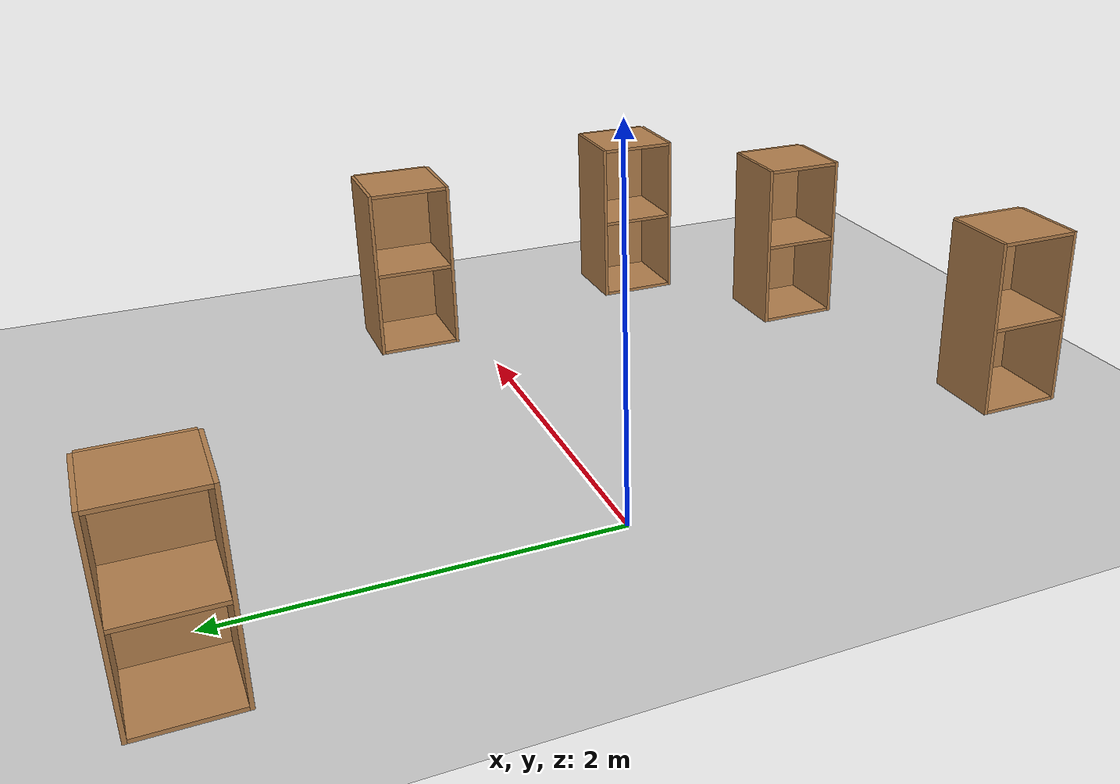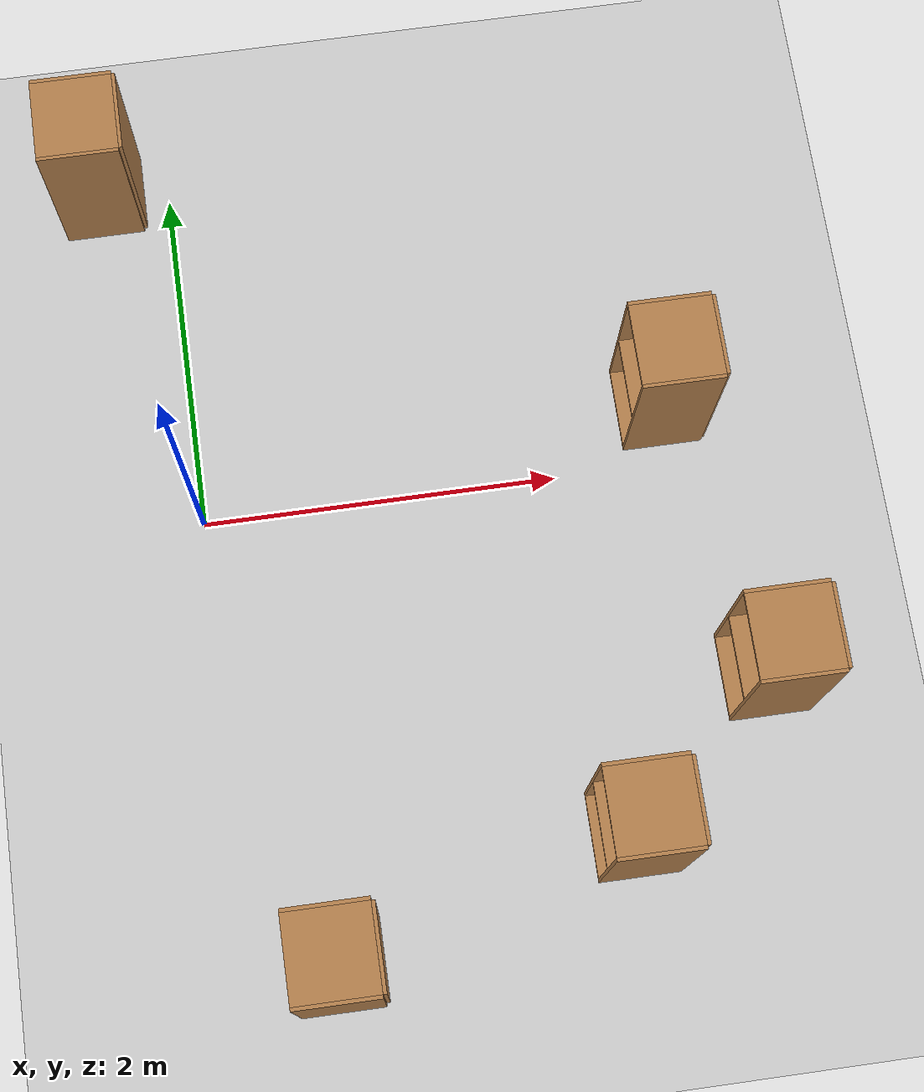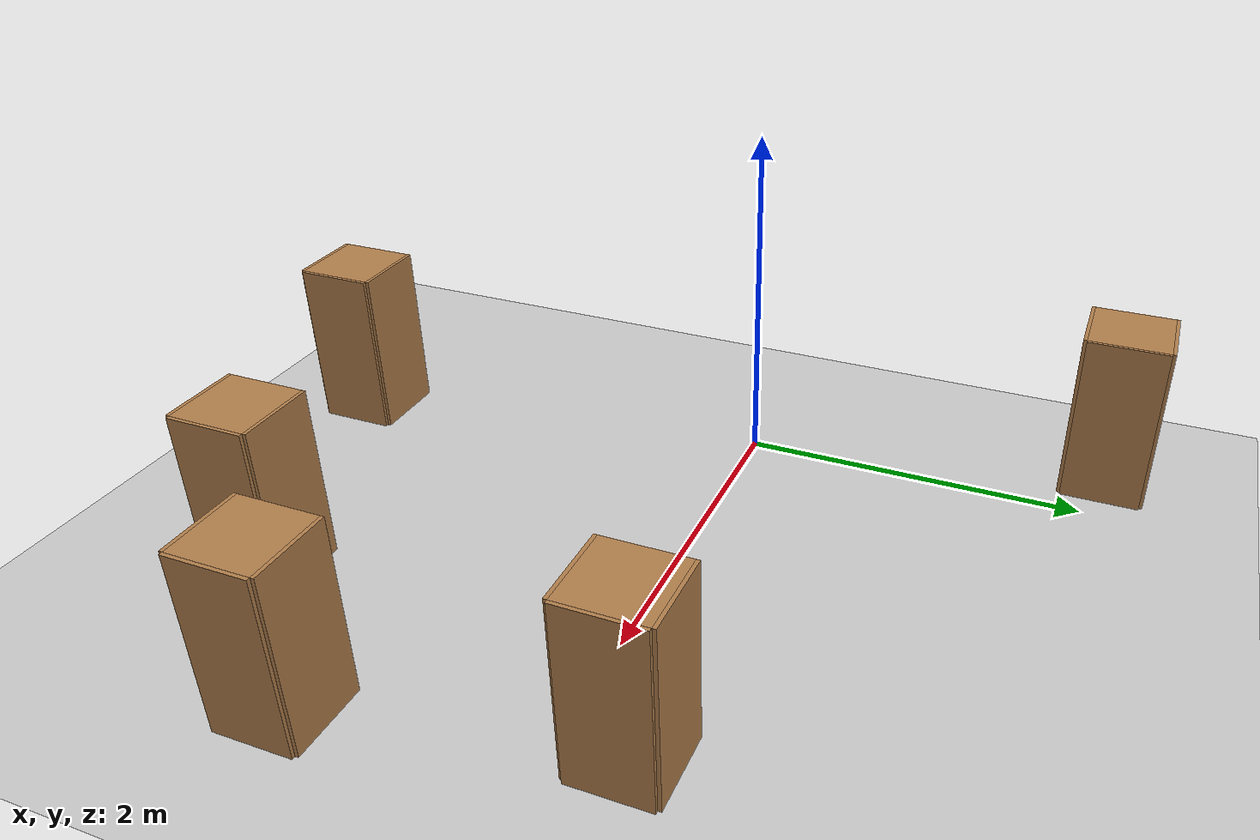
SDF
<sdf version="1.7">
 <world name="default">
  <model name="ground_plane">
   <static>1</static>
   <link name="link">
    <collision name="collision">
     <geometry><plane><normal>0 0 1</normal><size>100 100</size></plane></geometry>
     <surface>
      <contact><collide_bitmask>65535</collide_bitmask></contact>
      <friction><ode><mu>100</mu><mu2>50</mu2></ode></friction>
     </surface>
    </collision>
    <visual name="visual">
     <cast_shadows>0</cast_shadows>
     <geometry><plane><normal>0 0 1</normal><size>100 100</size></plane></geometry>
     <material>
      <script><uri>file://media/materials/scripts/gazebo.material</uri><name>Gazebo/Grey</name></script>
     </material>
    </visual>
   </link>
  </model>
  <model name="cabinet_clone_1">
   <static>1</static>
   <link name="cabinet_bottom_plate">
    <inertial>
     <pose>0 0 -1 0 -0 0</pose>
     <inertia><ixx>2.05</ixx><ixy>0</ixy><ixz>0</ixz><iyy>2.05</iyy><iyz>0</iyz><izz>2.05</izz></inertia>
     <mass>25</mass>
    </inertial>
    <collision name="cabinet_bottom_plate_geom">
     <pose>0 0 0.01 0 -0 0</pose>
     <geometry><box><size>0.45 0.45 0.02</size></box></geometry>
    </collision>
    <visual name="cabinet_bottom_plate_geom_visual">
     <pose>0 0 0.01 0 -0 0</pose>
     <geometry><box><size>0.45 0.45 0.02</size></box></geometry>
     <material>
      <script><uri>file://media/materials/scripts/gazebo.material</uri><name>Gazebo/Wood</name></script>
     </material>
    </visual>
    <collision name="cabinet_bottom_plate_geom_cabinet_back_plate">
     <pose>0.235 0 0.51 0 -0 0</pose>
     <geometry><box><size>0.02 0.45 1.02</size></box></geometry>
    </collision>
    <visual name="cabinet_bottom_plate_geom_cabinet_back_plate_visual">
     <pose>0.235 0 0.51 0 -0 0</pose>
     <geometry><box><size>0.02 0.45 1.02</size></box></geometry>
     <material>
      <script><uri>file://media/materials/scripts/gazebo.material</uri><name>Gazebo/Wood</name></script>
     </material>
    </visual>
    <collision name="cabinet_bottom_plate_geom_cabinet_left_plate">
     <pose>0 0.235 0.51 0 -0 0</pose>
     <geometry><box><size>0.45 0.02 1.02</size></box></geometry>
    </collision>
    <visual name="cabinet_bottom_plate_geom_cabinet_left_plate_visual">
     <pose>0 0.235 0.51 0 -0 0</pose>
     <geometry><box><size>0.45 0.02 1.02</size></box></geometry>
     <material>
      <script><uri>file://media/materials/scripts/gazebo.material</uri><name>Gazebo/Wood</name></script>
     </material>
    </visual>
    <collision name="cabinet_bottom_plate_geom_cabinet_middle_plate">
     <pose>0 0 0.51 0 -0 0</pose>
     <geometry><box><size>0.45 0.45 0.02</size></box></geometry>
    </collision>
    <visual name="cabinet_bottom_plate_geom_cabinet_middle_plate_visual">
     <pose>0 0 0.51 0 -0 0</pose>
     <geometry><box><size>0.45 0.45 0.02</size></box></geometry>
     <material>
      <script><uri>file://media/materials/scripts/gazebo.material</uri><name>Gazebo/Wood</name></script>
     </material>
    </visual>
    <collision name="cabinet_bottom_plate_geom_cabinet_right_plate">
     <pose>0 -0.235 0.51 0 -0 0</pose>
     <geometry><box><size>0.45 0.02 1.02</size></box></geometry>
    </collision>
    <visual name="cabinet_bottom_plate_geom_cabinet_right_plate_visual">
     <pose>0 -0.235 0.51 0 -0 0</pose>
     <geometry><box><size>0.45 0.02 1.02</size></box></geometry>
     <material>
      <script><uri>file://media/materials/scripts/gazebo.material</uri><name>Gazebo/Wood</name></script>
     </material>
    </visual>
    <collision name="cabinet_bottom_plate_geom_cabinet_top_plate">
     <pose>0 0 1.01 0 -0 0</pose>
     <geometry><box><size>0.45 0.45 0.02</size></box></geometry>
    </collision>
    <visual name="cabinet_bottom_plate_geom_cabinet_top_plate_visual">
     <pose>0 0 1.01 0 -0 0</pose>
     <geometry><box><size>0.45 0.45 0.02</size></box></geometry>
     <material>
      <script><uri>file://media/materials/scripts/gazebo.material</uri><name>Gazebo/Wood</name></script>
     </material>
    </visual>
   </link>
   <pose>0.445414 -2.52539 0 0 -0 0</pose>
  </model>
  <model name="cabinet_clone_2">
   <static>1</static>
   <link name="cabinet_bottom_plate">
    <inertial>
     <pose>0 0 -1 0 -0 0</pose>
     <inertia><ixx>2.05</ixx><ixy>0</ixy><ixz>0</ixz><iyy>2.05</iyy><iyz>0</iyz><izz>2.05</izz></inertia>
     <mass>25</mass>
    </inertial>
    <collision name="cabinet_bottom_plate_geom">
     <pose>0 0 0.01 0 -0 0</pose>
     <geometry><box><size>0.45 0.45 0.02</size></box></geometry>
    </collision>
    <visual name="cabinet_bottom_plate_geom_visual">
     <pose>0 0 0.01 0 -0 0</pose>
     <geometry><box><size>0.45 0.45 0.02</size></box></geometry>
     <material>
      <script><uri>file://media/materials/scripts/gazebo.material</uri><name>Gazebo/Wood</name></script>
     </material>
    </visual>
    <collision name="cabinet_bottom_plate_geom_cabinet_back_plate">
     <pose>0.235 0 0.51 0 -0 0</pose>
     <geometry><box><size>0.02 0.45 1.02</size></box></geometry>
    </collision>
    <visual name="cabinet_bottom_plate_geom_cabinet_back_plate_visual">
     <pose>0.235 0 0.51 0 -0 0</pose>
     <geometry><box><size>0.02 0.45 1.02</size></box></geometry>
     <material>
      <script><uri>file://media/materials/scripts/gazebo.material</uri><name>Gazebo/Wood</name></script>
     </material>
    </visual>
    <collision name="cabinet_bottom_plate_geom_cabinet_left_plate">
     <pose>0 0.235 0.51 0 -0 0</pose>
     <geometry><box><size>0.45 0.02 1.02</size></box></geometry>
    </collision>
    <visual name="cabinet_bottom_plate_geom_cabinet_left_plate_visual">
     <pose>0 0.235 0.51 0 -0 0</pose>
     <geometry><box><size>0.45 0.02 1.02</size></box></geometry>
     <material>
      <script><uri>file://media/materials/scripts/gazebo.material</uri><name>Gazebo/Wood</name></script>
     </material>
    </visual>
    <collision name="cabinet_bottom_plate_geom_cabinet_middle_plate">
     <pose>0 0 0.51 0 -0 0</pose>
     <geometry><box><size>0.45 0.45 0.02</size></box></geometry>
    </collision>
    <visual name="cabinet_bottom_plate_geom_cabinet_middle_plate_visual">
     <pose>0 0 0.51 0 -0 0</pose>
     <geometry><box><size>0.45 0.45 0.02</size></box></geometry>
     <material>
      <script><uri>file://media/materials/scripts/gazebo.material</uri><name>Gazebo/Wood</name></script>
     </material>
    </visual>
    <collision name="cabinet_bottom_plate_geom_cabinet_right_plate">
     <pose>0 -0.235 0.51 0 -0 0</pose>
     <geometry><box><size>0.45 0.02 1.02</size></box></geometry>
    </collision>
    <visual name="cabinet_bottom_plate_geom_cabinet_right_plate_visual">
     <pose>0 -0.235 0.51 0 -0 0</pose>
     <geometry><box><size>0.45 0.02 1.02</size></box></geometry>
     <material>
      <script><uri>file://media/materials/scripts/gazebo.material</uri><name>Gazebo/Wood</name></script>
     </material>
    </visual>
    <collision name="cabinet_bottom_plate_geom_cabinet_top_plate">
     <pose>0 0 1.01 0 -0 0</pose>
     <geometry><box><size>0.45 0.45 0.02</size></box></geometry>
    </collision>
    <visual name="cabinet_bottom_plate_geom_cabinet_top_plate_visual">
     <pose>0 0 1.01 0 -0 0</pose>
     <geometry><box><size>0.45 0.45 0.02</size></box></geometry>
     <material>
      <script><uri>file://media/materials/scripts/gazebo.material</uri><name>Gazebo/Wood</name></script>
     </material>
    </visual>
   </link>
   <pose>2.10569 -2.03931 0 0 -0 0</pose>
  </model>
  <model name="cabinet_clone_3">
   <static>1</static>
   <link name="cabinet_bottom_plate">
    <inertial>
     <pose>0 0 -1 0 -0 0</pose>
     <inertia><ixx>2.05</ixx><ixy>0</ixy><ixz>0</ixz><iyy>2.05</iyy><iyz>0</iyz><izz>2.05</izz></inertia>
     <mass>25</mass>
    </inertial>
    <collision name="cabinet_bottom_plate_geom">
     <pose>0 0 0.01 0 -0 0</pose>
     <geometry><box><size>0.45 0.45 0.02</size></box></geometry>
    </collision>
    <visual name="cabinet_bottom_plate_geom_visual">
     <pose>0 0 0.01 0 -0 0</pose>
     <geometry><box><size>0.45 0.45 0.02</size></box></geometry>
     <material>
      <script><uri>file://media/materials/scripts/gazebo.material</uri><name>Gazebo/Wood</name></script>
     </material>
    </visual>
    <collision name="cabinet_bottom_plate_geom_cabinet_back_plate">
     <pose>0.235 0 0.51 0 -0 0</pose>
     <geometry><box><size>0.02 0.45 1.02</size></box></geometry>
    </collision>
    <visual name="cabinet_bottom_plate_geom_cabinet_back_plate_visual">
     <pose>0.235 0 0.51 0 -0 0</pose>
     <geometry><box><size>0.02 0.45 1.02</size></box></geometry>
     <material>
      <script><uri>file://media/materials/scripts/gazebo.material</uri><name>Gazebo/Wood</name></script>
     </material>
    </visual>
    <collision name="cabinet_bottom_plate_geom_cabinet_left_plate">
     <pose>0 0.235 0.51 0 -0 0</pose>
     <geometry><box><size>0.45 0.02 1.02</size></box></geometry>
    </collision>
    <visual name="cabinet_bottom_plate_geom_cabinet_left_plate_visual">
     <pose>0 0.235 0.51 0 -0 0</pose>
     <geometry><box><size>0.45 0.02 1.02</size></box></geometry>
     <material>
      <script><uri>file://media/materials/scripts/gazebo.material</uri><name>Gazebo/Wood</name></script>
     </material>
    </visual>
    <collision name="cabinet_bottom_plate_geom_cabinet_middle_plate">
     <pose>0 0 0.51 0 -0 0</pose>
     <geometry><box><size>0.45 0.45 0.02</size></box></geometry>
    </collision>
    <visual name="cabinet_bottom_plate_geom_cabinet_middle_plate_visual">
     <pose>0 0 0.51 0 -0 0</pose>
     <geometry><box><size>0.45 0.45 0.02</size></box></geometry>
     <material>
      <script><uri>file://media/materials/scripts/gazebo.material</uri><name>Gazebo/Wood</name></script>
     </material>
    </visual>
    <collision name="cabinet_bottom_plate_geom_cabinet_right_plate">
     <pose>0 -0.235 0.51 0 -0 0</pose>
     <geometry><box><size>0.45 0.02 1.02</size></box></geometry>
    </collision>
    <visual name="cabinet_bottom_plate_geom_cabinet_right_plate_visual">
     <pose>0 -0.235 0.51 0 -0 0</pose>
     <geometry><box><size>0.45 0.02 1.02</size></box></geometry>
     <material>
      <script><uri>file://media/materials/scripts/gazebo.material</uri><name>Gazebo/Wood</name></script>
     </material>
    </visual>
    <collision name="cabinet_bottom_plate_geom_cabinet_top_plate">
     <pose>0 0 1.01 0 -0 0</pose>
     <geometry><box><size>0.45 0.45 0.02</size></box></geometry>
    </collision>
    <visual name="cabinet_bottom_plate_geom_cabinet_top_plate_visual">
     <pose>0 0 1.01 0 -0 0</pose>
     <geometry><box><size>0.45 0.45 0.02</size></box></geometry>
     <material>
      <script><uri>file://media/materials/scripts/gazebo.material</uri><name>Gazebo/Wood</name></script>
     </material>
    </visual>
   </link>
   <pose>2.96068 -1.26821 0 0 -0 0</pose>
  </model>
  <model name="cabinet_clone_4">
   <static>1</static>
   <link name="cabinet_bottom_plate">
    <inertial>
     <pose>0 0 -1 0 -0 0</pose>
     <inertia><ixx>2.05</ixx><ixy>0</ixy><ixz>0</ixz><iyy>2.05</iyy><iyz>0</iyz><izz>2.05</izz></inertia>
     <mass>25</mass>
    </inertial>
    <collision name="cabinet_bottom_plate_geom">
     <pose>0 0 0.01 0 -0 0</pose>
     <geometry><box><size>0.45 0.45 0.02</size></box></geometry>
    </collision>
    <visual name="cabinet_bottom_plate_geom_visual">
     <pose>0 0 0.01 0 -0 0</pose>
     <geometry><box><size>0.45 0.45 0.02</size></box></geometry>
     <material>
      <script><uri>file://media/materials/scripts/gazebo.material</uri><name>Gazebo/Wood</name></script>
     </material>
    </visual>
    <collision name="cabinet_bottom_plate_geom_cabinet_back_plate">
     <pose>0.235 0 0.51 0 -0 0</pose>
     <geometry><box><size>0.02 0.45 1.02</size></box></geometry>
    </collision>
    <visual name="cabinet_bottom_plate_geom_cabinet_back_plate_visual">
     <pose>0.235 0 0.51 0 -0 0</pose>
     <geometry><box><size>0.02 0.45 1.02</size></box></geometry>
     <material>
      <script><uri>file://media/materials/scripts/gazebo.material</uri><name>Gazebo/Wood</name></script>
     </material>
    </visual>
    <collision name="cabinet_bottom_plate_geom_cabinet_left_plate">
     <pose>0 0.235 0.51 0 -0 0</pose>
     <geometry><box><size>0.45 0.02 1.02</size></box></geometry>
    </collision>
    <visual name="cabinet_bottom_plate_geom_cabinet_left_plate_visual">
     <pose>0 0.235 0.51 0 -0 0</pose>
     <geometry><box><size>0.45 0.02 1.02</size></box></geometry>
     <material>
      <script><uri>file://media/materials/scripts/gazebo.material</uri><name>Gazebo/Wood</name></script>
     </material>
    </visual>
    <collision name="cabinet_bottom_plate_geom_cabinet_middle_plate">
     <pose>0 0 0.51 0 -0 0</pose>
     <geometry><box><size>0.45 0.45 0.02</size></box></geometry>
    </collision>
    <visual name="cabinet_bottom_plate_geom_cabinet_middle_plate_visual">
     <pose>0 0 0.51 0 -0 0</pose>
     <geometry><box><size>0.45 0.45 0.02</size></box></geometry>
     <material>
      <script><uri>file://media/materials/scripts/gazebo.material</uri><name>Gazebo/Wood</name></script>
     </material>
    </visual>
    <collision name="cabinet_bottom_plate_geom_cabinet_right_plate">
     <pose>0 -0.235 0.51 0 -0 0</pose>
     <geometry><box><size>0.45 0.02 1.02</size></box></geometry>
    </collision>
    <visual name="cabinet_bottom_plate_geom_cabinet_right_plate_visual">
     <pose>0 -0.235 0.51 0 -0 0</pose>
     <geometry><box><size>0.45 0.02 1.02</size></box></geometry>
     <material>
      <script><uri>file://media/materials/scripts/gazebo.material</uri><name>Gazebo/Wood</name></script>
     </material>
    </visual>
    <collision name="cabinet_bottom_plate_geom_cabinet_top_plate">
     <pose>0 0 1.01 0 -0 0</pose>
     <geometry><box><size>0.45 0.45 0.02</size></box></geometry>
    </collision>
    <visual name="cabinet_bottom_plate_geom_cabinet_top_plate_visual">
     <pose>0 0 1.01 0 -0 0</pose>
     <geometry><box><size>0.45 0.45 0.02</size></box></geometry>
     <material>
      <script><uri>file://media/materials/scripts/gazebo.material</uri><name>Gazebo/Wood</name></script>
     </material>
    </visual>
   </link>
   <pose>2.63998 0.358487 0 0 -0 0</pose>
  </model>
  <model name="cabinet_clone_5">
   <static>1</static>
   <link name="cabinet_bottom_plate">
    <inertial>
     <pose>0 0 -1 0 -0 0</pose>
     <inertia><ixx>2.05</ixx><ixy>0</ixy><ixz>0</ixz><iyy>2.05</iyy><iyz>0</iyz><izz>2.05</izz></inertia>
     <mass>25</mass>
    </inertial>
    <collision name="cabinet_bottom_plate_geom">
     <pose>0 0 0.01 0 -0 0</pose>
     <geometry><box><size>0.45 0.45 0.02</size></box></geometry>
    </collision>
    <visual name="cabinet_bottom_plate_geom_visual">
     <pose>0 0 0.01 0 -0 0</pose>
     <geometry><box><size>0.45 0.45 0.02</size></box></geometry>
     <material>
      <script><uri>file://media/materials/scripts/gazebo.material</uri><name>Gazebo/Wood</name></script>
     </material>
    </visual>
    <collision name="cabinet_bottom_plate_geom_cabinet_back_plate">
     <pose>0.235 0 0.51 0 -0 0</pose>
     <geometry><box><size>0.02 0.45 1.02</size></box></geometry>
    </collision>
    <visual name="cabinet_bottom_plate_geom_cabinet_back_plate_visual">
     <pose>0.235 0 0.51 0 -0 0</pose>
     <geometry><box><size>0.02 0.45 1.02</size></box></geometry>
     <material>
      <script><uri>file://media/materials/scripts/gazebo.material</uri><name>Gazebo/Wood</name></script>
     </material>
    </visual>
    <collision name="cabinet_bottom_plate_geom_cabinet_left_plate">
     <pose>0 0.235 0.51 0 -0 0</pose>
     <geometry><box><size>0.45 0.02 1.02</size></box></geometry>
    </collision>
    <visual name="cabinet_bottom_plate_geom_cabinet_left_plate_visual">
     <pose>0 0.235 0.51 0 -0 0</pose>
     <geometry><box><size>0.45 0.02 1.02</size></box></geometry>
     <material>
      <script><uri>file://media/materials/scripts/gazebo.material</uri><name>Gazebo/Wood</name></script>
     </material>
    </visual>
    <collision name="cabinet_bottom_plate_geom_cabinet_middle_plate">
     <pose>0 0 0.51 0 -0 0</pose>
     <geometry><box><size>0.45 0.45 0.02</size></box></geometry>
    </collision>
    <visual name="cabinet_bottom_plate_geom_cabinet_middle_plate_visual">
     <pose>0 0 0.51 0 -0 0</pose>
     <geometry><box><size>0.45 0.45 0.02</size></box></geometry>
     <material>
      <script><uri>file://media/materials/scripts/gazebo.material</uri><name>Gazebo/Wood</name></script>
     </material>
    </visual>
    <collision name="cabinet_bottom_plate_geom_cabinet_right_plate">
     <pose>0 -0.235 0.51 0 -0 0</pose>
     <geometry><box><size>0.45 0.02 1.02</size></box></geometry>
    </collision>
    <visual name="cabinet_bottom_plate_geom_cabinet_right_plate_visual">
     <pose>0 -0.235 0.51 0 -0 0</pose>
     <geometry><box><size>0.45 0.02 1.02</size></box></geometry>
     <material>
      <script><uri>file://media/materials/scripts/gazebo.material</uri><name>Gazebo/Wood</name></script>
     </material>
    </visual>
    <collision name="cabinet_bottom_plate_geom_cabinet_top_plate">
     <pose>0 0 1.01 0 -0 0</pose>
     <geometry><box><size>0.45 0.45 0.02</size></box></geometry>
    </collision>
    <visual name="cabinet_bottom_plate_geom_cabinet_top_plate_visual">
     <pose>0 0 1.01 0 -0 0</pose>
     <geometry><box><size>0.45 0.45 0.02</size></box></geometry>
     <material>
      <script><uri>file://media/materials/scripts/gazebo.material</uri><name>Gazebo/Wood</name></script>
     </material>
    </visual>
   </link>
   <pose>-0.386612 2.09255 0 0 -0 0</pose>
  </model>
 </world>
</sdf>
